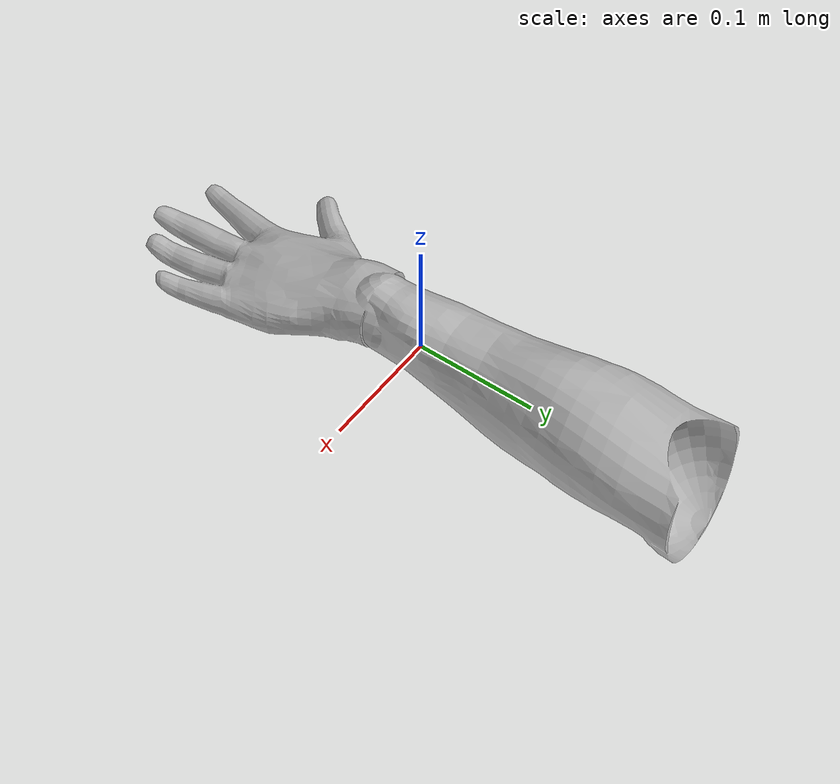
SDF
<sdf version='1.6'>
  <model name='arm_urdf'>
    <link name='base_link'>
      <pose frame=''>0 0 0 0 -0 0</pose>
      <inertial>
        <pose frame=''>0 0 0 0 -0 0</pose>
        <mass>1.9512</mass>
        <inertia>
          <ixx>0.030606</ixx>
          <ixy>-0.00014646</ixy>
          <ixz>0.00026364</ixz>
          <iyy>0.031076</iyy>
          <iyz>0.0015738</iyz>
          <izz>0.0021774</izz>
        </inertia>
      </inertial>
      <collision name='base_link_collision'>
        <pose frame=''>0 0 0 0 -0 0</pose>
        <geometry>
          <mesh>
            <scale>1 1 1</scale>
            <uri>model://arm_urdf/meshes/base_link.STL</uri>
          </mesh>
        </geometry>
      </collision>
      <visual name='base_link_visual'>
        <pose frame=''>0 0 0 0 -0 0</pose>
        <geometry>
          <mesh>
            <scale>1 1 1</scale>
            <uri>model://arm_urdf/meshes/base_link.STL</uri>
          </mesh>
        </geometry>
      </visual>
    </link>
  </model>
</sdf>
